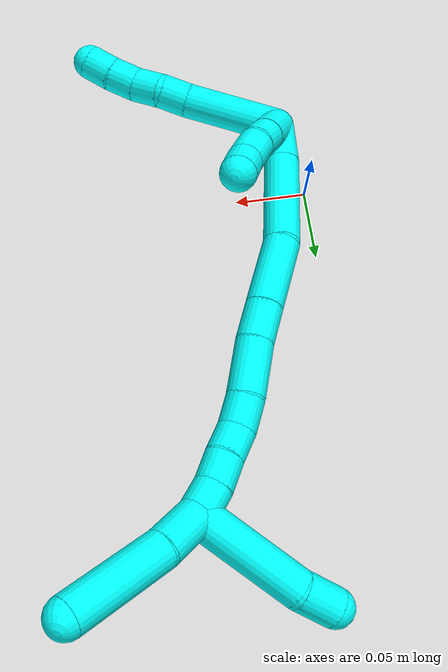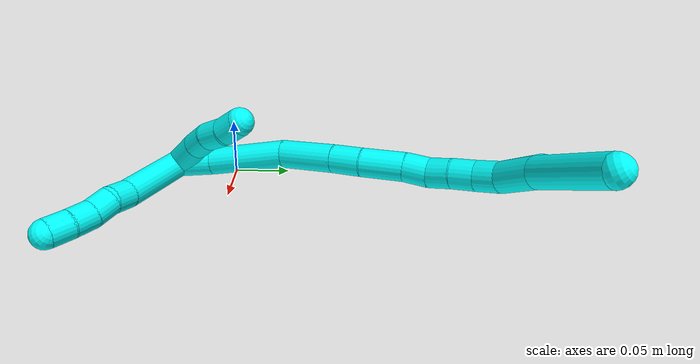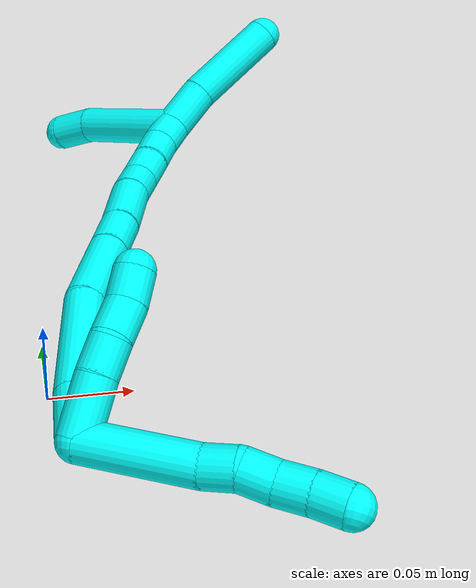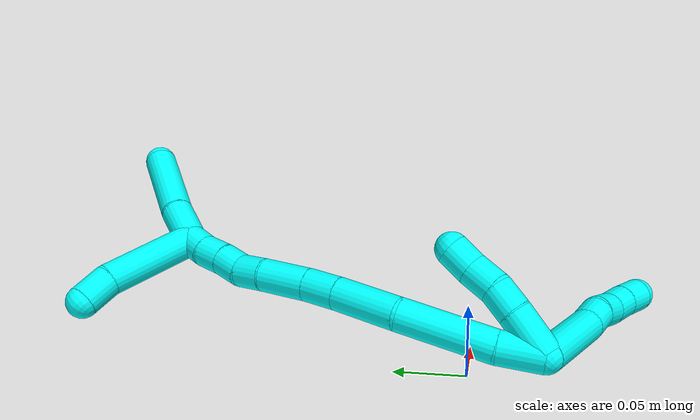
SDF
<sdf version="1.7">
 <world name="default">
  <model name="3">
   <static>0</static>
   <link name="3">
    <collision name="collision-cylinder-e_1_2_8">
     <pose>0.023302 -0.025335 0.000652 1.54508 0.743462 0.726216</pose>
     <geometry><cylinder><radius>0.0125</radius><length>0.068855</length></cylinder></geometry>
     <surface>
      <friction><ode><mu>1.16</mu><mu2>1.16</mu2><slip1>0</slip1><slip2>0</slip2></ode></friction>
      <contact><ode><kp>1e+06</kp><kd>1</kd><max_vel>0</max_vel><min_depth>0.001</min_depth></ode></contact>
     </surface>
    </collision>
    <visual name="visual-cylinder-e_1_2_8">
     <pose>0.023302 -0.025335 0.000652 1.54508 0.743462 0.726216</pose>
     <geometry><cylinder><radius>0.0125</radius><length>0.068855</length></cylinder></geometry>
     <material><ambient>0.003922 1 0.996078 1</ambient></material>
    </visual>
    <collision name="collision-cylinder-e_2_8_9">
     <pose>0.052474 -0.058949 0.002611 1.41417 0.610972 0.526423</pose>
     <geometry><cylinder><radius>0.0125</radius><length>0.020466</length></cylinder></geometry>
     <surface>
      <friction><ode><mu>1.16</mu><mu2>1.16</mu2><slip1>0</slip1><slip2>0</slip2></ode></friction>
      <contact><ode><kp>1e+06</kp><kd>1</kd><max_vel>0</max_vel><min_depth>0.001</min_depth></ode></contact>
     </surface>
    </collision>
    <visual name="visual-cylinder-e_2_8_9">
     <pose>0.052474 -0.058949 0.002611 1.41417 0.610972 0.526423</pose>
     <geometry><cylinder><radius>0.0125</radius><length>0.020466</length></cylinder></geometry>
     <material><ambient>0.003922 1 0.996078 1</ambient></material>
    </visual>
    <collision name="collision-cylinder-e_3_9_10">
     <pose>0.065741 -0.073902 0.002612 1.76416 0.827346 0.979873</pose>
     <geometry><cylinder><radius>0.0125</radius><length>0.020095</length></cylinder></geometry>
     <surface>
      <friction><ode><mu>1.16</mu><mu2>1.16</mu2><slip1>0</slip1><slip2>0</slip2></ode></friction>
      <contact><ode><kp>1e+06</kp><kd>1</kd><max_vel>0</max_vel><min_depth>0.001</min_depth></ode></contact>
     </surface>
    </collision>
    <visual name="visual-cylinder-e_3_9_10">
     <pose>0.065741 -0.073902 0.002612 1.76416 0.827346 0.979873</pose>
     <geometry><cylinder><radius>0.0125</radius><length>0.020095</length></cylinder></geometry>
     <material><ambient>0.003922 1 0.996078 1</ambient></material>
    </visual>
    <collision name="collision-cylinder-e_4_10_11">
     <pose>0.079222 -0.088706 0.000666 1.64925 0.640977 0.68943</pose>
     <geometry><cylinder><radius>0.0125</radius><length>0.020352</length></cylinder></geometry>
     <surface>
      <friction><ode><mu>1.16</mu><mu2>1.16</mu2><slip1>0</slip1><slip2>0</slip2></ode></friction>
      <contact><ode><kp>1e+06</kp><kd>1</kd><max_vel>0</max_vel><min_depth>0.001</min_depth></ode></contact>
     </surface>
    </collision>
    <visual name="visual-cylinder-e_4_10_11">
     <pose>0.079222 -0.088706 0.000666 1.64925 0.640977 0.68943</pose>
     <geometry><cylinder><radius>0.0125</radius><length>0.020352</length></cylinder></geometry>
     <material><ambient>0.003922 1 0.996078 1</ambient></material>
    </visual>
    <collision name="collision-cylinder-e_5_11_6">
     <pose>0.090849 -0.105162 -0.001496 1.7517 0.579749 0.687176</pose>
     <geometry><cylinder><radius>0.0125</radius><length>0.020232</length></cylinder></geometry>
     <surface>
      <friction><ode><mu>1.16</mu><mu2>1.16</mu2><slip1>0</slip1><slip2>0</slip2></ode></friction>
      <contact><ode><kp>1e+06</kp><kd>1</kd><max_vel>0</max_vel><min_depth>0.001</min_depth></ode></contact>
     </surface>
    </collision>
    <visual name="visual-cylinder-e_5_11_6">
     <pose>0.090849 -0.105162 -0.001496 1.7517 0.579749 0.687176</pose>
     <geometry><cylinder><radius>0.0125</radius><length>0.020232</length></cylinder></geometry>
     <material><ambient>0.003922 1 0.996078 1</ambient></material>
    </visual>
    <collision name="collision-cylinder-e_1_2_12">
     <pose>-0.001212 -0.002395 0.017731 0.134275 -0.06763 -0.004549</pose>
     <geometry><cylinder><radius>0.0125</radius><length>0.035867</length></cylinder></geometry>
     <surface>
      <friction><ode><mu>1.16</mu><mu2>1.16</mu2><slip1>0</slip1><slip2>0</slip2></ode></friction>
      <contact><ode><kp>1e+06</kp><kd>1</kd><max_vel>0</max_vel><min_depth>0.001</min_depth></ode></contact>
     </surface>
    </collision>
    <visual name="visual-cylinder-e_1_2_12">
     <pose>-0.001212 -0.002395 0.017731 0.134275 -0.06763 -0.004549</pose>
     <geometry><cylinder><radius>0.0125</radius><length>0.035867</length></cylinder></geometry>
     <material><ambient>0.003922 1 0.996078 1</ambient></material>
    </visual>
    <collision name="collision-cylinder-e_2_12_13">
     <pose>-0.002046 -0.006056 0.046108 0.118275 0.035183 0.002083</pose>
     <geometry><cylinder><radius>0.0125</radius><length>0.021455</length></cylinder></geometry>
     <surface>
      <friction><ode><mu>1.16</mu><mu2>1.16</mu2><slip1>0</slip1><slip2>0</slip2></ode></friction>
      <contact><ode><kp>1e+06</kp><kd>1</kd><max_vel>0</max_vel><min_depth>0.001</min_depth></ode></contact>
     </surface>
    </collision>
    <visual name="visual-cylinder-e_2_12_13">
     <pose>-0.002046 -0.006056 0.046108 0.118275 0.035183 0.002083</pose>
     <geometry><cylinder><radius>0.0125</radius><length>0.021455</length></cylinder></geometry>
     <material><ambient>0.003922 1 0.996078 1</ambient></material>
    </visual>
    <collision name="collision-cylinder-e_3_13_14">
     <pose>0.000345 -0.006635 0.067671 -0.062701 0.182072 -0.005726</pose>
     <geometry><cylinder><radius>0.0125</radius><length>0.022243</length></cylinder></geometry>
     <surface>
      <friction><ode><mu>1.16</mu><mu2>1.16</mu2><slip1>0</slip1><slip2>0</slip2></ode></friction>
      <contact><ode><kp>1e+06</kp><kd>1</kd><max_vel>0</max_vel><min_depth>0.001</min_depth></ode></contact>
     </surface>
    </collision>
    <visual name="visual-cylinder-e_3_13_14">
     <pose>0.000345 -0.006635 0.067671 -0.062701 0.182072 -0.005726</pose>
     <geometry><cylinder><radius>0.0125</radius><length>0.022243</length></cylinder></geometry>
     <material><ambient>0.003922 1 0.996078 1</ambient></material>
    </visual>
    <collision name="collision-cylinder-e_4_14_5">
     <pose>0.002084 -0.005659 0.088797 -0.02846 -0.026895 0.000383</pose>
     <geometry><cylinder><radius>0.0125</radius><length>0.020435</length></cylinder></geometry>
     <surface>
      <friction><ode><mu>1.16</mu><mu2>1.16</mu2><slip1>0</slip1><slip2>0</slip2></ode></friction>
      <contact><ode><kp>1e+06</kp><kd>1</kd><max_vel>0</max_vel><min_depth>0.001</min_depth></ode></contact>
     </surface>
    </collision>
    <visual name="visual-cylinder-e_4_14_5">
     <pose>0.002084 -0.005659 0.088797 -0.02846 -0.026895 0.000383</pose>
     <geometry><cylinder><radius>0.0125</radius><length>0.020435</length></cylinder></geometry>
     <material><ambient>0.003922 1 0.996078 1</ambient></material>
    </visual>
    <collision name="collision-cylinder-e_1_2_15">
     <pose>0.001069 0.009965 0.013486 -0.636356 0.063686 -0.020983</pose>
     <geometry><cylinder><radius>0.0125</radius><length>0.033605</length></cylinder></geometry>
     <surface>
      <friction><ode><mu>1.16</mu><mu2>1.16</mu2><slip1>0</slip1><slip2>0</slip2></ode></friction>
      <contact><ode><kp>1e+06</kp><kd>1</kd><max_vel>0</max_vel><min_depth>0.001</min_depth></ode></contact>
     </surface>
    </collision>
    <visual name="visual-cylinder-e_1_2_15">
     <pose>0.001069 0.009965 0.013486 -0.636356 0.063686 -0.020983</pose>
     <geometry><cylinder><radius>0.0125</radius><length>0.033605</length></cylinder></geometry>
     <material><ambient>0.003922 1 0.996078 1</ambient></material>
    </visual>
    <collision name="collision-cylinder-e_2_15_16">
     <pose>0.00549 0.03648 0.058361 -0.48522 0.094166 -0.023321</pose>
     <geometry><cylinder><radius>0.0125</radius><length>0.071284</length></cylinder></geometry>
     <surface>
      <friction><ode><mu>1.16</mu><mu2>1.16</mu2><slip1>0</slip1><slip2>0</slip2></ode></friction>
      <contact><ode><kp>1e+06</kp><kd>1</kd><max_vel>0</max_vel><min_depth>0.001</min_depth></ode></contact>
     </surface>
    </collision>
    <visual name="visual-cylinder-e_2_15_16">
     <pose>0.00549 0.03648 0.058361 -0.48522 0.094166 -0.023321</pose>
     <geometry><cylinder><radius>0.0125</radius><length>0.071284</length></cylinder></geometry>
     <material><ambient>0.003922 1 0.996078 1</ambient></material>
    </visual>
    <collision name="collision-cylinder-e_3_16_17">
     <pose>0.01677 0.06252 0.111375 -0.413536 0.3239 -0.068517</pose>
     <geometry><cylinder><radius>0.0125</radius><length>0.049824</length></cylinder></geometry>
     <surface>
      <friction><ode><mu>1.16</mu><mu2>1.16</mu2><slip1>0</slip1><slip2>0</slip2></ode></friction>
      <contact><ode><kp>1e+06</kp><kd>1</kd><max_vel>0</max_vel><min_depth>0.001</min_depth></ode></contact>
     </surface>
    </collision>
    <visual name="visual-cylinder-e_3_16_17">
     <pose>0.01677 0.06252 0.111375 -0.413536 0.3239 -0.068517</pose>
     <geometry><cylinder><radius>0.0125</radius><length>0.049824</length></cylinder></geometry>
     <material><ambient>0.003922 1 0.996078 1</ambient></material>
    </visual>
    <collision name="collision-cylinder-e_4_17_18">
     <pose>0.029131 0.077353 0.144138 -0.447287 0.3445 -0.079099</pose>
     <geometry><cylinder><radius>0.0125</radius><length>0.026249</length></cylinder></geometry>
     <surface>
      <friction><ode><mu>1.16</mu><mu2>1.16</mu2><slip1>0</slip1><slip2>0</slip2></ode></friction>
      <contact><ode><kp>1e+06</kp><kd>1</kd><max_vel>0</max_vel><min_depth>0.001</min_depth></ode></contact>
     </surface>
    </collision>
    <visual name="visual-cylinder-e_4_17_18">
     <pose>0.029131 0.077353 0.144138 -0.447287 0.3445 -0.079099</pose>
     <geometry><cylinder><radius>0.0125</radius><length>0.026249</length></cylinder></geometry>
     <material><ambient>0.003922 1 0.996078 1</ambient></material>
    </visual>
    <collision name="collision-cylinder-e_5_18_19">
     <pose>0.038927 0.091718 0.170731 -0.528379 0.291198 -0.079292</pose>
     <geometry><cylinder><radius>0.0125</radius><length>0.037363</length></cylinder></geometry>
     <surface>
      <friction><ode><mu>1.16</mu><mu2>1.16</mu2><slip1>0</slip1><slip2>0</slip2></ode></friction>
      <contact><ode><kp>1e+06</kp><kd>1</kd><max_vel>0</max_vel><min_depth>0.001</min_depth></ode></contact>
     </surface>
    </collision>
    <visual name="visual-cylinder-e_5_18_19">
     <pose>0.038927 0.091718 0.170731 -0.528379 0.291198 -0.079292</pose>
     <geometry><cylinder><radius>0.0125</radius><length>0.037363</length></cylinder></geometry>
     <material><ambient>0.003922 1 0.996078 1</ambient></material>
    </visual>
    <collision name="collision-cylinder-e_6_19_20">
     <pose>0.048701 0.105584 0.194696 -0.517532 0.423139 -0.113585</pose>
     <geometry><cylinder><radius>0.0125</radius><length>0.021481</length></cylinder></geometry>
     <surface>
      <friction><ode><mu>1.16</mu><mu2>1.16</mu2><slip1>0</slip1><slip2>0</slip2></ode></friction>
      <contact><ode><kp>1e+06</kp><kd>1</kd><max_vel>0</max_vel><min_depth>0.001</min_depth></ode></contact>
     </surface>
    </collision>
    <visual name="visual-cylinder-e_6_19_20">
     <pose>0.048701 0.105584 0.194696 -0.517532 0.423139 -0.113585</pose>
     <geometry><cylinder><radius>0.0125</radius><length>0.021481</length></cylinder></geometry>
     <material><ambient>0.003922 1 0.996078 1</ambient></material>
    </visual>
    <collision name="collision-cylinder-e_7_20_21">
     <pose>0.056352 0.112419 0.212475 -0.21151 0.3295 -0.035293</pose>
     <geometry><cylinder><radius>0.0125</radius><length>0.020036</length></cylinder></geometry>
     <surface>
      <friction><ode><mu>1.16</mu><mu2>1.16</mu2><slip1>0</slip1><slip2>0</slip2></ode></friction>
      <contact><ode><kp>1e+06</kp><kd>1</kd><max_vel>0</max_vel><min_depth>0.001</min_depth></ode></contact>
     </surface>
    </collision>
    <visual name="visual-cylinder-e_7_20_21">
     <pose>0.056352 0.112419 0.212475 -0.21151 0.3295 -0.035293</pose>
     <geometry><cylinder><radius>0.0125</radius><length>0.020036</length></cylinder></geometry>
     <material><ambient>0.003922 1 0.996078 1</ambient></material>
    </visual>
    <collision name="collision-cylinder-e_8_21_22">
     <pose>0.063043 0.117371 0.230714 -0.318854 0.350045 -0.056851</pose>
     <geometry><cylinder><radius>0.0125</radius><length>0.020115</length></cylinder></geometry>
     <surface>
      <friction><ode><mu>1.16</mu><mu2>1.16</mu2><slip1>0</slip1><slip2>0</slip2></ode></friction>
      <contact><ode><kp>1e+06</kp><kd>1</kd><max_vel>0</max_vel><min_depth>0.001</min_depth></ode></contact>
     </surface>
    </collision>
    <visual name="visual-cylinder-e_8_21_22">
     <pose>0.063043 0.117371 0.230714 -0.318854 0.350045 -0.056851</pose>
     <geometry><cylinder><radius>0.0125</radius><length>0.020115</length></cylinder></geometry>
     <material><ambient>0.003922 1 0.996078 1</ambient></material>
    </visual>
    <collision name="collision-cylinder-e_9_22_1">
     <pose>0.070198 0.121545 0.248918 -0.130574 0.378726 -0.02506</pose>
     <geometry><cylinder><radius>0.0125</radius><length>0.020044</length></cylinder></geometry>
     <surface>
      <friction><ode><mu>1.16</mu><mu2>1.16</mu2><slip1>0</slip1><slip2>0</slip2></ode></friction>
      <contact><ode><kp>1e+06</kp><kd>1</kd><max_vel>0</max_vel><min_depth>0.001</min_depth></ode></contact>
     </surface>
    </collision>
    <visual name="visual-cylinder-e_9_22_1">
     <pose>0.070198 0.121545 0.248918 -0.130574 0.378726 -0.02506</pose>
     <geometry><cylinder><radius>0.0125</radius><length>0.020044</length></cylinder></geometry>
     <material><ambient>0.003922 1 0.996078 1</ambient></material>
    </visual>
    <collision name="collision-cylinder-e_1_1_23">
     <pose>0.059996 0.157136 0.260089 -1.51446 -0.383867 0.363301</pose>
     <geometry><cylinder><radius>0.0125</radius><length>0.074271</length></cylinder></geometry>
     <surface>
      <friction><ode><mu>1.16</mu><mu2>1.16</mu2><slip1>0</slip1><slip2>0</slip2></ode></friction>
      <contact><ode><kp>1e+06</kp><kd>1</kd><max_vel>0</max_vel><min_depth>0.001</min_depth></ode></contact>
     </surface>
    </collision>
    <visual name="visual-cylinder-e_1_1_23">
     <pose>0.059996 0.157136 0.260089 -1.51446 -0.383867 0.363301</pose>
     <geometry><cylinder><radius>0.0125</radius><length>0.074271</length></cylinder></geometry>
     <material><ambient>0.003922 1 0.996078 1</ambient></material>
    </visual>
    <collision name="collision-cylinder-e_2_23_4">
     <pose>0.041737 0.203374 0.259599 -1.77279 -0.345043 0.42079</pose>
     <geometry><cylinder><radius>0.0125</radius><length>0.025729</length></cylinder></geometry>
     <surface>
      <friction><ode><mu>1.16</mu><mu2>1.16</mu2><slip1>0</slip1><slip2>0</slip2></ode></friction>
      <contact><ode><kp>1e+06</kp><kd>1</kd><max_vel>0</max_vel><min_depth>0.001</min_depth></ode></contact>
     </surface>
    </collision>
    <visual name="visual-cylinder-e_2_23_4">
     <pose>0.041737 0.203374 0.259599 -1.77279 -0.345043 0.42079</pose>
     <geometry><cylinder><radius>0.0125</radius><length>0.025729</length></cylinder></geometry>
     <material><ambient>0.003922 1 0.996078 1</ambient></material>
    </visual>
    <collision name="collision-cylinder-e_1_1_24">
     <pose>0.078705 0.119322 0.273492 0.220256 0.296444 0.033019</pose>
     <geometry><cylinder><radius>0.0125</radius><length>0.032878</length></cylinder></geometry>
     <surface>
      <friction><ode><mu>1.16</mu><mu2>1.16</mu2><slip1>0</slip1><slip2>0</slip2></ode></friction>
      <contact><ode><kp>1e+06</kp><kd>1</kd><max_vel>0</max_vel><min_depth>0.001</min_depth></ode></contact>
     </surface>
    </collision>
    <visual name="visual-cylinder-e_1_1_24">
     <pose>0.078705 0.119322 0.273492 0.220256 0.296444 0.033019</pose>
     <geometry><cylinder><radius>0.0125</radius><length>0.032878</length></cylinder></geometry>
     <material><ambient>0.003922 1 0.996078 1</ambient></material>
    </visual>
    <collision name="collision-cylinder-e_2_24_3">
     <pose>0.096905 0.106069 0.317997 0.324756 0.410629 0.068204</pose>
     <geometry><cylinder><radius>0.0125</radius><length>0.067122</length></cylinder></geometry>
     <surface>
      <friction><ode><mu>1.16</mu><mu2>1.16</mu2><slip1>0</slip1><slip2>0</slip2></ode></friction>
      <contact><ode><kp>1e+06</kp><kd>1</kd><max_vel>0</max_vel><min_depth>0.001</min_depth></ode></contact>
     </surface>
    </collision>
    <visual name="visual-cylinder-e_2_24_3">
     <pose>0.096905 0.106069 0.317997 0.324756 0.410629 0.068204</pose>
     <geometry><cylinder><radius>0.0125</radius><length>0.067122</length></cylinder></geometry>
     <material><ambient>0.003922 1 0.996078 1</ambient></material>
    </visual>
    <collision name="collision-sphere-3">
     <pose>0.110302 0.096251 0.34716 0 -0 0</pose>
     <geometry><sphere><radius>0.0125</radius></sphere></geometry>
     <surface>
      <friction><ode><mu>1.16</mu><mu2>1.16</mu2><slip1>0</slip1><slip2>0</slip2></ode></friction>
      <contact><ode><kp>1e+06</kp><kd>1</kd><max_vel>0</max_vel><min_depth>0.001</min_depth></ode></contact>
     </surface>
    </collision>
    <visual name="visual-sphere-3">
     <pose>0.110302 0.096251 0.34716 0 -0 0</pose>
     <geometry><sphere><radius>0.0125</radius></sphere></geometry>
     <material><ambient>0.003922 1 0.996078 1</ambient></material>
    </visual>
    <collision name="collision-sphere-24">
     <pose>0.083507 0.115888 0.288834 0 -0 0</pose>
     <geometry><sphere><radius>0.0125</radius></sphere></geometry>
     <surface>
      <friction><ode><mu>1.16</mu><mu2>1.16</mu2><slip1>0</slip1><slip2>0</slip2></ode></friction>
      <contact><ode><kp>1e+06</kp><kd>1</kd><max_vel>0</max_vel><min_depth>0.001</min_depth></ode></contact>
     </surface>
    </collision>
    <visual name="visual-sphere-24">
     <pose>0.083507 0.115888 0.288834 0 -0 0</pose>
     <geometry><sphere><radius>0.0125</radius></sphere></geometry>
     <material><ambient>0.003922 1 0.996078 1</ambient></material>
    </visual>
    <collision name="collision-sphere-4">
     <pose>0.037386 0.215234 0.25717 0 -0 0</pose>
     <geometry><sphere><radius>0.0125</radius></sphere></geometry>
     <surface>
      <friction><ode><mu>1.16</mu><mu2>1.16</mu2><slip1>0</slip1><slip2>0</slip2></ode></friction>
      <contact><ode><kp>1e+06</kp><kd>1</kd><max_vel>0</max_vel><min_depth>0.001</min_depth></ode></contact>
     </surface>
    </collision>
    <visual name="visual-sphere-4">
     <pose>0.037386 0.215234 0.25717 0 -0 0</pose>
     <geometry><sphere><radius>0.0125</radius></sphere></geometry>
     <material><ambient>0.003922 1 0.996078 1</ambient></material>
    </visual>
    <collision name="collision-sphere-23">
     <pose>0.046088 0.191514 0.262028 0 -0 0</pose>
     <geometry><sphere><radius>0.0125</radius></sphere></geometry>
     <surface>
      <friction><ode><mu>1.16</mu><mu2>1.16</mu2><slip1>0</slip1><slip2>0</slip2></ode></friction>
      <contact><ode><kp>1e+06</kp><kd>1</kd><max_vel>0</max_vel><min_depth>0.001</min_depth></ode></contact>
     </surface>
    </collision>
    <visual name="visual-sphere-23">
     <pose>0.046088 0.191514 0.262028 0 -0 0</pose>
     <geometry><sphere><radius>0.0125</radius></sphere></geometry>
     <material><ambient>0.003922 1 0.996078 1</ambient></material>
    </visual>
    <collision name="collision-sphere-1">
     <pose>0.073903 0.122757 0.25815 0 -0 0</pose>
     <geometry><sphere><radius>0.0125</radius></sphere></geometry>
     <surface>
      <friction><ode><mu>1.16</mu><mu2>1.16</mu2><slip1>0</slip1><slip2>0</slip2></ode></friction>
      <contact><ode><kp>1e+06</kp><kd>1</kd><max_vel>0</max_vel><min_depth>0.001</min_depth></ode></contact>
     </surface>
    </collision>
    <visual name="visual-sphere-1">
     <pose>0.073903 0.122757 0.25815 0 -0 0</pose>
     <geometry><sphere><radius>0.0125</radius></sphere></geometry>
     <material><ambient>0.003922 1 0.996078 1</ambient></material>
    </visual>
    <collision name="collision-sphere-22">
     <pose>0.066492 0.120332 0.239685 0 -0 0</pose>
     <geometry><sphere><radius>0.0125</radius></sphere></geometry>
     <surface>
      <friction><ode><mu>1.16</mu><mu2>1.16</mu2><slip1>0</slip1><slip2>0</slip2></ode></friction>
      <contact><ode><kp>1e+06</kp><kd>1</kd><max_vel>0</max_vel><min_depth>0.001</min_depth></ode></contact>
     </surface>
    </collision>
    <visual name="visual-sphere-22">
     <pose>0.066492 0.120332 0.239685 0 -0 0</pose>
     <geometry><sphere><radius>0.0125</radius></sphere></geometry>
     <material><ambient>0.003922 1 0.996078 1</ambient></material>
    </visual>
    <collision name="collision-sphere-21">
     <pose>0.059594 0.114409 0.221742 0 -0 0</pose>
     <geometry><sphere><radius>0.0125</radius></sphere></geometry>
     <surface>
      <friction><ode><mu>1.16</mu><mu2>1.16</mu2><slip1>0</slip1><slip2>0</slip2></ode></friction>
      <contact><ode><kp>1e+06</kp><kd>1</kd><max_vel>0</max_vel><min_depth>0.001</min_depth></ode></contact>
     </surface>
    </collision>
    <visual name="visual-sphere-21">
     <pose>0.059594 0.114409 0.221742 0 -0 0</pose>
     <geometry><sphere><radius>0.0125</radius></sphere></geometry>
     <material><ambient>0.003922 1 0.996078 1</ambient></material>
    </visual>
    <collision name="collision-sphere-6">
     <pose>0.09639 -0.113487 -0.003019 0 -0 0</pose>
     <geometry><sphere><radius>0.0125</radius></sphere></geometry>
     <surface>
      <friction><ode><mu>1.16</mu><mu2>1.16</mu2><slip1>0</slip1><slip2>0</slip2></ode></friction>
      <contact><ode><kp>1e+06</kp><kd>1</kd><max_vel>0</max_vel><min_depth>0.001</min_depth></ode></contact>
     </surface>
    </collision>
    <visual name="visual-sphere-6">
     <pose>0.09639 -0.113487 -0.003019 0 -0 0</pose>
     <geometry><sphere><radius>0.0125</radius></sphere></geometry>
     <material><ambient>0.003922 1 0.996078 1</ambient></material>
    </visual>
    <collision name="collision-sphere-11">
     <pose>0.085307 -0.096837 2.6e-05 0 -0 0</pose>
     <geometry><sphere><radius>0.0125</radius></sphere></geometry>
     <surface>
      <friction><ode><mu>1.16</mu><mu2>1.16</mu2><slip1>0</slip1><slip2>0</slip2></ode></friction>
      <contact><ode><kp>1e+06</kp><kd>1</kd><max_vel>0</max_vel><min_depth>0.001</min_depth></ode></contact>
     </surface>
    </collision>
    <visual name="visual-sphere-11">
     <pose>0.085307 -0.096837 2.6e-05 0 -0 0</pose>
     <geometry><sphere><radius>0.0125</radius></sphere></geometry>
     <material><ambient>0.003922 1 0.996078 1</ambient></material>
    </visual>
    <collision name="collision-sphere-10">
     <pose>0.073137 -0.080575 0.001305 0 -0 0</pose>
     <geometry><sphere><radius>0.0125</radius></sphere></geometry>
     <surface>
      <friction><ode><mu>1.16</mu><mu2>1.16</mu2><slip1>0</slip1><slip2>0</slip2></ode></friction>
      <contact><ode><kp>1e+06</kp><kd>1</kd><max_vel>0</max_vel><min_depth>0.001</min_depth></ode></contact>
     </surface>
    </collision>
    <visual name="visual-sphere-10">
     <pose>0.073137 -0.080575 0.001305 0 -0 0</pose>
     <geometry><sphere><radius>0.0125</radius></sphere></geometry>
     <material><ambient>0.003922 1 0.996078 1</ambient></material>
    </visual>
    <collision name="collision-sphere-9">
     <pose>0.058345 -0.067228 0.003919 0 -0 0</pose>
     <geometry><sphere><radius>0.0125</radius></sphere></geometry>
     <surface>
      <friction><ode><mu>1.16</mu><mu2>1.16</mu2><slip1>0</slip1><slip2>0</slip2></ode></friction>
      <contact><ode><kp>1e+06</kp><kd>1</kd><max_vel>0</max_vel><min_depth>0.001</min_depth></ode></contact>
     </surface>
    </collision>
    <visual name="visual-sphere-9">
     <pose>0.058345 -0.067228 0.003919 0 -0 0</pose>
     <geometry><sphere><radius>0.0125</radius></sphere></geometry>
     <material><ambient>0.003922 1 0.996078 1</ambient></material>
    </visual>
    <collision name="collision-sphere-2">
     <geometry><sphere><radius>0.0125</radius></sphere></geometry>
     <surface>
      <friction><ode><mu>1.16</mu><mu2>1.16</mu2><slip1>0</slip1><slip2>0</slip2></ode></friction>
      <contact><ode><kp>1e+06</kp><kd>1</kd><max_vel>0</max_vel><min_depth>0.001</min_depth></ode></contact>
     </surface>
    </collision>
    <visual name="visual-sphere-2">
     <geometry><sphere><radius>0.0125</radius></sphere></geometry>
     <material><ambient>0.003922 1 0.996078 1</ambient></material>
    </visual>
    <collision name="collision-sphere-19">
     <pose>0.04429 0.100739 0.186186 0 -0 0</pose>
     <geometry><sphere><radius>0.0125</radius></sphere></geometry>
     <surface>
      <friction><ode><mu>1.16</mu><mu2>1.16</mu2><slip1>0</slip1><slip2>0</slip2></ode></friction>
      <contact><ode><kp>1e+06</kp><kd>1</kd><max_vel>0</max_vel><min_depth>0.001</min_depth></ode></contact>
     </surface>
    </collision>
    <visual name="visual-sphere-19">
     <pose>0.04429 0.100739 0.186186 0 -0 0</pose>
     <geometry><sphere><radius>0.0125</radius></sphere></geometry>
     <material><ambient>0.003922 1 0.996078 1</ambient></material>
    </visual>
    <collision name="collision-sphere-8">
     <pose>0.046604 -0.05067 0.001304 0 -0 0</pose>
     <geometry><sphere><radius>0.0125</radius></sphere></geometry>
     <surface>
      <friction><ode><mu>1.16</mu><mu2>1.16</mu2><slip1>0</slip1><slip2>0</slip2></ode></friction>
      <contact><ode><kp>1e+06</kp><kd>1</kd><max_vel>0</max_vel><min_depth>0.001</min_depth></ode></contact>
     </surface>
    </collision>
    <visual name="visual-sphere-8">
     <pose>0.046604 -0.05067 0.001304 0 -0 0</pose>
     <geometry><sphere><radius>0.0125</radius></sphere></geometry>
     <material><ambient>0.003922 1 0.996078 1</ambient></material>
    </visual>
    <collision name="collision-sphere-12">
     <pose>-0.002424 -0.004791 0.035462 0 -0 0</pose>
     <geometry><sphere><radius>0.0125</radius></sphere></geometry>
     <surface>
      <friction><ode><mu>1.16</mu><mu2>1.16</mu2><slip1>0</slip1><slip2>0</slip2></ode></friction>
      <contact><ode><kp>1e+06</kp><kd>1</kd><max_vel>0</max_vel><min_depth>0.001</min_depth></ode></contact>
     </surface>
    </collision>
    <visual name="visual-sphere-12">
     <pose>-0.002424 -0.004791 0.035462 0 -0 0</pose>
     <geometry><sphere><radius>0.0125</radius></sphere></geometry>
     <material><ambient>0.003922 1 0.996078 1</ambient></material>
    </visual>
    <collision name="collision-sphere-13">
     <pose>-0.001669 -0.007321 0.056754 0 -0 0</pose>
     <geometry><sphere><radius>0.0125</radius></sphere></geometry>
     <surface>
      <friction><ode><mu>1.16</mu><mu2>1.16</mu2><slip1>0</slip1><slip2>0</slip2></ode></friction>
      <contact><ode><kp>1e+06</kp><kd>1</kd><max_vel>0</max_vel><min_depth>0.001</min_depth></ode></contact>
     </surface>
    </collision>
    <visual name="visual-sphere-13">
     <pose>-0.001669 -0.007321 0.056754 0 -0 0</pose>
     <geometry><sphere><radius>0.0125</radius></sphere></geometry>
     <material><ambient>0.003922 1 0.996078 1</ambient></material>
    </visual>
    <collision name="collision-sphere-14">
     <pose>0.002358 -0.00595 0.078587 0 -0 0</pose>
     <geometry><sphere><radius>0.0125</radius></sphere></geometry>
     <surface>
      <friction><ode><mu>1.16</mu><mu2>1.16</mu2><slip1>0</slip1><slip2>0</slip2></ode></friction>
      <contact><ode><kp>1e+06</kp><kd>1</kd><max_vel>0</max_vel><min_depth>0.001</min_depth></ode></contact>
     </surface>
    </collision>
    <visual name="visual-sphere-14">
     <pose>0.002358 -0.00595 0.078587 0 -0 0</pose>
     <geometry><sphere><radius>0.0125</radius></sphere></geometry>
     <material><ambient>0.003922 1 0.996078 1</ambient></material>
    </visual>
    <collision name="collision-sphere-5">
     <pose>0.001809 -0.005369 0.099007 0 -0 0</pose>
     <geometry><sphere><radius>0.0125</radius></sphere></geometry>
     <surface>
      <friction><ode><mu>1.16</mu><mu2>1.16</mu2><slip1>0</slip1><slip2>0</slip2></ode></friction>
      <contact><ode><kp>1e+06</kp><kd>1</kd><max_vel>0</max_vel><min_depth>0.001</min_depth></ode></contact>
     </surface>
    </collision>
    <visual name="visual-sphere-5">
     <pose>0.001809 -0.005369 0.099007 0 -0 0</pose>
     <geometry><sphere><radius>0.0125</radius></sphere></geometry>
     <material><ambient>0.003922 1 0.996078 1</ambient></material>
    </visual>
    <collision name="collision-sphere-15">
     <pose>0.002139 0.01993 0.026972 0 -0 0</pose>
     <geometry><sphere><radius>0.0125</radius></sphere></geometry>
     <surface>
      <friction><ode><mu>1.16</mu><mu2>1.16</mu2><slip1>0</slip1><slip2>0</slip2></ode></friction>
      <contact><ode><kp>1e+06</kp><kd>1</kd><max_vel>0</max_vel><min_depth>0.001</min_depth></ode></contact>
     </surface>
    </collision>
    <visual name="visual-sphere-15">
     <pose>0.002139 0.01993 0.026972 0 -0 0</pose>
     <geometry><sphere><radius>0.0125</radius></sphere></geometry>
     <material><ambient>0.003922 1 0.996078 1</ambient></material>
    </visual>
    <collision name="collision-sphere-16">
     <pose>0.008841 0.053029 0.089749 0 -0 0</pose>
     <geometry><sphere><radius>0.0125</radius></sphere></geometry>
     <surface>
      <friction><ode><mu>1.16</mu><mu2>1.16</mu2><slip1>0</slip1><slip2>0</slip2></ode></friction>
      <contact><ode><kp>1e+06</kp><kd>1</kd><max_vel>0</max_vel><min_depth>0.001</min_depth></ode></contact>
     </surface>
    </collision>
    <visual name="visual-sphere-16">
     <pose>0.008841 0.053029 0.089749 0 -0 0</pose>
     <geometry><sphere><radius>0.0125</radius></sphere></geometry>
     <material><ambient>0.003922 1 0.996078 1</ambient></material>
    </visual>
    <collision name="collision-sphere-17">
     <pose>0.024699 0.07201 0.133 0 -0 0</pose>
     <geometry><sphere><radius>0.0125</radius></sphere></geometry>
     <surface>
      <friction><ode><mu>1.16</mu><mu2>1.16</mu2><slip1>0</slip1><slip2>0</slip2></ode></friction>
      <contact><ode><kp>1e+06</kp><kd>1</kd><max_vel>0</max_vel><min_depth>0.001</min_depth></ode></contact>
     </surface>
    </collision>
    <visual name="visual-sphere-17">
     <pose>0.024699 0.07201 0.133 0 -0 0</pose>
     <geometry><sphere><radius>0.0125</radius></sphere></geometry>
     <material><ambient>0.003922 1 0.996078 1</ambient></material>
    </visual>
    <collision name="collision-sphere-18">
     <pose>0.033563 0.082696 0.155276 0 -0 0</pose>
     <geometry><sphere><radius>0.0125</radius></sphere></geometry>
     <surface>
      <friction><ode><mu>1.16</mu><mu2>1.16</mu2><slip1>0</slip1><slip2>0</slip2></ode></friction>
      <contact><ode><kp>1e+06</kp><kd>1</kd><max_vel>0</max_vel><min_depth>0.001</min_depth></ode></contact>
     </surface>
    </collision>
    <visual name="visual-sphere-18">
     <pose>0.033563 0.082696 0.155276 0 -0 0</pose>
     <geometry><sphere><radius>0.0125</radius></sphere></geometry>
     <material><ambient>0.003922 1 0.996078 1</ambient></material>
    </visual>
    <collision name="collision-sphere-20">
     <pose>0.053111 0.110429 0.203207 0 -0 0</pose>
     <geometry><sphere><radius>0.0125</radius></sphere></geometry>
     <surface>
      <friction><ode><mu>1.16</mu><mu2>1.16</mu2><slip1>0</slip1><slip2>0</slip2></ode></friction>
      <contact><ode><kp>1e+06</kp><kd>1</kd><max_vel>0</max_vel><min_depth>0.001</min_depth></ode></contact>
     </surface>
    </collision>
    <visual name="visual-sphere-20">
     <pose>0.053111 0.110429 0.203207 0 -0 0</pose>
     <geometry><sphere><radius>0.0125</radius></sphere></geometry>
     <material><ambient>0.003922 1 0.996078 1</ambient></material>
    </visual>
    <inertial>
     <pose>0.040489 0.053231 0.133075 0 -0 0</pose>
     <mass>0.75</mass>
     <inertia><ixx>0.0002</ixx><ixy>0</ixy><ixz>0</ixz><iyy>0.000156</iyy><iyz>0</iyz><izz>-2.7e-05</izz></inertia>
    </inertial>
   </link>
   <pose>0.012831 -0.052412 0.012263 -0.740627 0.647182 0.108928</pose>
  </model>
 </world>
</sdf>
